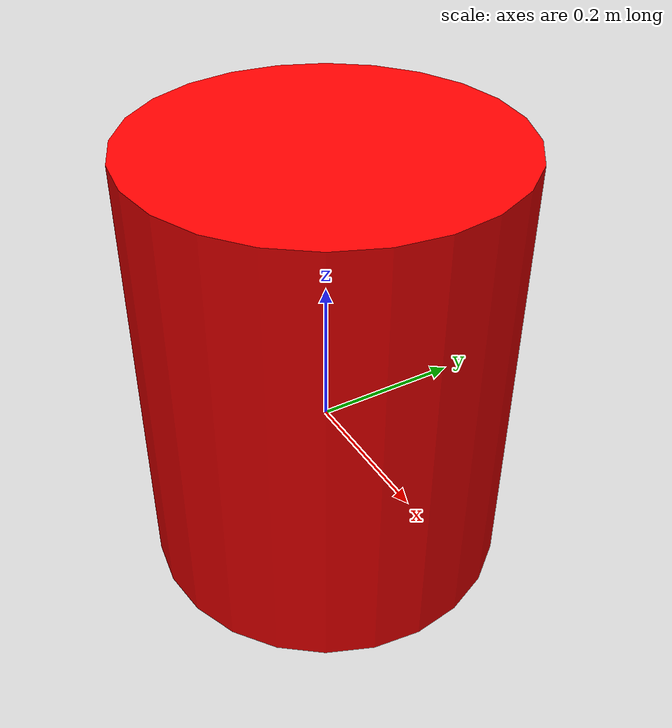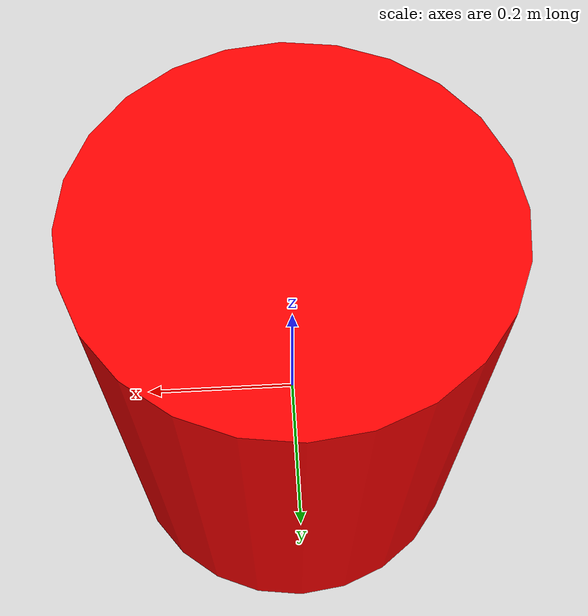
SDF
<?xml version='1.0'?>
<sdf version='1.7'>
  <model name='cylinder_r_0'>
    <link name='link_0'>
      <pose>0 0 0.1 0 -0 0</pose>
      <inertial>
        <mass>6.05229</mass>
        <inertia>
          <ixx>0.111748</ixx>
          <ixy>0</ixy>
          <ixz>0</ixz>
          <iyy>0.111748</iyy>
          <iyz>0</iyz>
          <izz>0.183147</izz>
        </inertia>
        <pose>0 0 0 0 -0 0</pose>
      </inertial>
      <gravity>1</gravity>
      <self_collide>0</self_collide>
      <kinematic>0</kinematic>
      <enable_wind>0</enable_wind>
      <visual name='visual'>
        <pose>0 0 0 0 -0 0</pose>
        <geometry>
          <cylinder>
            <radius>0.246011</radius>
            <length>0.6</length>
          </cylinder>
        </geometry>
        <material>
          <lighting>1</lighting>
          <script>
            <uri>file://media/materials/scripts/gazebo.material</uri>
            <name>Gazebo/Grey</name>
          </script>
          <ambient>1 0 0 1</ambient>
          <diffuse>1 0 0 1</diffuse>
          <specular>0 0 0 1</specular>
          <emissive>0 0 0 1</emissive>
          <shader type='vertex'>
            <normal_map>__default__</normal_map>
          </shader>
        </material>
        <cast_shadows>1</cast_shadows>
        <transparency>0</transparency>
      </visual>
      <collision name='collision'>
        <laser_retro>0</laser_retro>
        <max_contacts>10</max_contacts>
        <pose>0 0 0 0 -0 0</pose>
        <geometry>
          <cylinder>
            <radius>0.246011</radius>
            <length>0.2</length>
          </cylinder>
        </geometry>
        <surface>
          <friction>
            <ode>
              <mu>1</mu>
              <mu2>1</mu2>
              <fdir1>0 0 0</fdir1>
              <slip1>0</slip1>
              <slip2>0</slip2>
            </ode>
            <torsional>
              <coefficient>1</coefficient>
              <patch_radius>0</patch_radius>
              <surface_radius>0</surface_radius>
              <use_patch_radius>1</use_patch_radius>
              <ode>
                <slip>0</slip>
              </ode>
            </torsional>
          </friction>
          <bounce>
            <restitution_coefficient>0</restitution_coefficient>
            <threshold>1e+06</threshold>
          </bounce>
          <contact>
            <collide_without_contact>0</collide_without_contact>
            <collide_without_contact_bitmask>1</collide_without_contact_bitmask>
            <collide_bitmask>1</collide_bitmask>
            <ode>
              <soft_cfm>0</soft_cfm>
              <soft_erp>0.2</soft_erp>
              <kp>1e+13</kp>
              <kd>1</kd>
              <max_vel>0.01</max_vel>
              <min_depth>0</min_depth>
            </ode>
            <bullet>
              <split_impulse>1</split_impulse>
              <split_impulse_penetration_threshold>-0.01</split_impulse_penetration_threshold>
              <soft_cfm>0</soft_cfm>
              <soft_erp>0.2</soft_erp>
              <kp>1e+13</kp>
              <kd>1</kd>
            </bullet>
          </contact>
        </surface>
      </collision>
    </link>
    <static>1</static>
    <allow_auto_disable>1</allow_auto_disable>
  </model>
</sdf>
